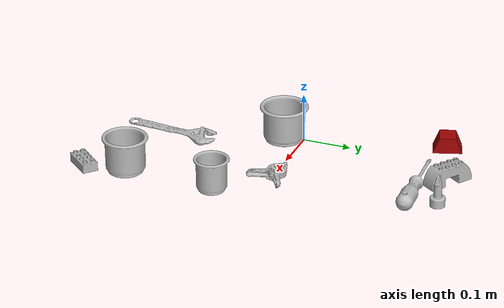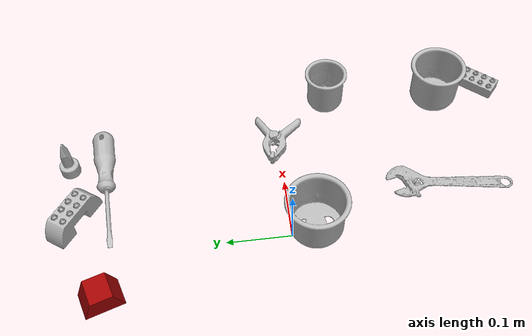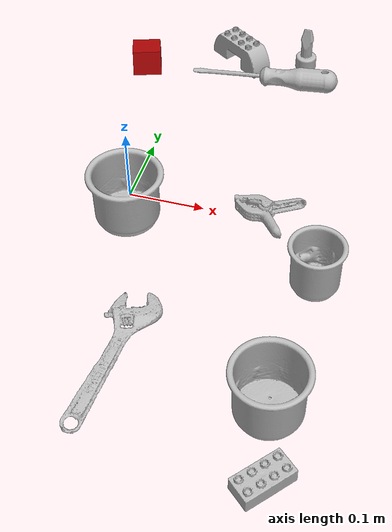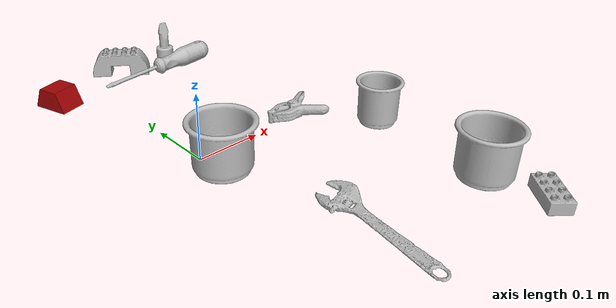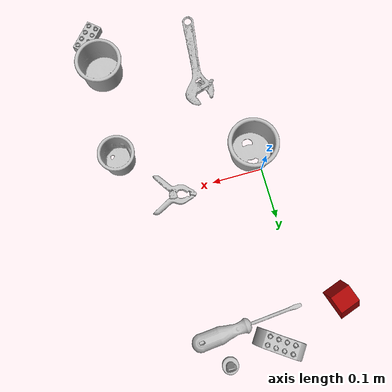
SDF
<sdf version="1.4">
  <world name="default">
    <light name="light1" type="point">
      <pose>0 0 1 0 0 0</pose>
      <diffuse>3 3 3 1</diffuse>
      <specular>3 3 3 1</specular>
    </light>
    <light name="light2" type="point">
      <pose>0 0.5 2 0 0 0</pose>
      <diffuse>1 1 1 1</diffuse>
      <specular>1 1 1 1</specular>
    </light>
    <light name="light3" type="point">
      <pose>0 0.5 2 0 0 0</pose>
      <diffuse>3 3 3 1</diffuse>
      <specular>3 3 3 1</specular>
    </light>
    <scene>
      <ambient>0.7 0.7 0.7</ambient>
    </scene>
    <model name="cup1">
      <link name="link_cup1">
        <collision name="default">
          <geometry>
            <mesh>
              <uri>model://d_cups/collision_meshes/collision.obj</uri>
              <scale>1.0 1.0 1.0</scale>
            </mesh>
          </geometry>
          <surface>
            <friction>
              <ode>
                <mu>0.5</mu>
                <mu2>0.5</mu2>
              </ode>
            </friction>
          <contact>
        <ode>
            <max_vel>0</max_vel>
            <min_depth>0.0001</min_depth>
            <kp>1e8</kp>
        </ode>
    </contact></surface>
        </collision>
        <visual name="default">
          <geometry>
            <mesh>
              <uri>model://d_cups/visual_meshes/visual.dae</uri>
              <scale>1.0 1.0 1.0</scale>
            </mesh>
          </geometry>
        </visual>
        <inertial>
          <mass>0.06783133745193481</mass>
          <pose>0.0008068059105426073 0.0019117397023364902 -0.002266651252284646 0.24012426461604838 -0.24709695541432683 0.5942481546461544</pose>
          <inertia>
            <ixx>5.679078e-05</ixx>
            <iyy>5.662642e-05</iyy>
            <izz>5.1405317e-05</izz>
            <ixy>0</ixy>
            <ixz>0</ixz>
            <iyz>0</iyz>
          </inertia>
        </inertial>
      </link>
      <pose>0.26460403203964233 -0.09142007678747177 0.0346590019762516 -6.030296950677269e-07 -3.780138223088021e-07 1.8119705851687344</pose>
    </model>
    <model name="cup2">
      <link name="link_cup2">
        <collision name="default">
          <geometry>
            <mesh>
              <uri>model://h_cups/collision_meshes/collision.obj</uri>
              <scale>1.0 1.0 1.0</scale>
            </mesh>
          </geometry>
          <surface>
            <friction>
              <ode>
                <mu>0.5</mu>
                <mu2>0.5</mu2>
              </ode>
            </friction>
          <contact>
        <ode>
            <max_vel>0</max_vel>
            <min_depth>0.0001</min_depth>
            <kp>1e8</kp>
        </ode>
    </contact></surface>
        </collision>
        <visual name="default">
          <geometry>
            <mesh>
              <uri>model://h_cups/visual_meshes/visual.dae</uri>
              <scale>1.0 1.0 1.0</scale>
            </mesh>
          </geometry>
        </visual>
        <inertial>
          <mass>0.0420527309179306</mass>
          <pose>-2.702834171941504e-05 0.0002301869390066713 -0.0018405404407531023 -0.02436231807299455 0.06545237013505961 0.1288477560592675</pose>
          <inertia>
            <ixx>5.430915e-05</ixx>
            <iyy>5.3661057e-05</iyy>
            <izz>5.69554e-05</izz>
            <ixy>0</ixy>
            <ixz>0</ixz>
            <iyz>0</iyz>
          </inertia>
        </inertial>
      </link>
      <pose>0.2527329623699188 -0.28120219707489014 0.037758007645606995 -5.019243565877972e-07 -9.220627261475667e-08 -0.9047771476535768</pose>
    </model>
    <model name="cup3">
      <link name="link_cup3">
        <collision name="default">
          <geometry>
            <mesh>
              <uri>model://i_cups/collision_meshes/collision.obj</uri>
              <scale>1.0 1.0 1.0</scale>
            </mesh>
          </geometry>
          <surface>
            <friction>
              <ode>
                <mu>0.5</mu>
                <mu2>0.5</mu2>
              </ode>
            </friction>
          <contact>
        <ode>
            <max_vel>0</max_vel>
            <min_depth>0.0001</min_depth>
            <kp>1e8</kp>
        </ode>
    </contact></surface>
        </collision>
        <visual name="default">
          <geometry>
            <mesh>
              <uri>model://i_cups/visual_meshes/visual.dae</uri>
              <scale>1.0 1.0 1.0</scale>
            </mesh>
          </geometry>
        </visual>
        <inertial>
          <mass>0.1172947883605957</mass>
          <pose>0.00011240218736929819 0.00016797319403849542 -0.0008579035638831556 -0.028982974239284674 -0.039873277979934216 -0.3459139003356122</pose>
          <inertia>
            <ixx>0.00016239638</ixx>
            <iyy>0.00016382721</iyy>
            <izz>0.00018150422</izz>
            <ixy>0</ixy>
            <ixz>0</ixz>
            <iyz>0</iyz>
          </inertia>
        </inertial>
      </link>
      <pose>0.010120023041963577 -0.038659144192934036 0.03777468204498291 0.001958170836712575 -0.006326687011724528 -1.8737668466956896</pose>
    </model>
    <model name="toy1">
      <link name="link_toy1">
        <collision name="default">
          <geometry>
            <mesh>
              <uri>model://prism/collision_meshes/collision.obj</uri>
              <scale>0.5 0.5 0.5</scale>
            </mesh>
          </geometry>
          <surface>
            <friction>
              <ode>
                <mu>0.5</mu>
                <mu2>0.5</mu2>
              </ode>
            </friction>
          <contact>
        <ode>
            <max_vel>0</max_vel>
            <min_depth>0.0001</min_depth>
            <kp>1e8</kp>
        </ode>
    </contact></surface>
        </collision>
        <visual name="default">
          <geometry>
            <mesh>
              <uri>model://prism/visual_meshes/visual.dae</uri>
              <scale>0.5 0.5 0.5</scale>
            </mesh>
          </geometry>
        </visual>
        <inertial>
          <mass>0.04854338616132736</mass>
          <pose>-4.92679828312248e-05 -2.480786349678965e-07 -0.0016934549203142524 0.0 0.006559181697473799 0.0</pose>
          <inertia>
            <ixx>1.0952453e-05</ixx>
            <iyy>1.3236178e-05</iyy>
            <izz>1.6212734e-05</izz>
            <ixy>0</ixy>
            <ixz>0</ixz>
            <iyz>0</iyz>
          </inertia>
        </inertial>
      </link>
      <pose>-0.06966307014226913 0.28306880593299866 0.01608499512076378 1.230285619880828e-07 3.6785678919611443e-09 1.8932133924807981</pose>
    </model>
    <model name="toy2">
      <link name="link_toy2">
        <collision name="default">
          <geometry>
            <mesh>
              <uri>model://e_toy_airplane/collision_meshes/collision.obj</uri>
              <scale>1.0 1.0 1.0</scale>
            </mesh>
          </geometry>
          <surface>
            <friction>
              <ode>
                <mu>0.5</mu>
                <mu2>0.5</mu2>
              </ode>
            </friction>
          <contact>
        <ode>
            <max_vel>0</max_vel>
            <min_depth>0.0001</min_depth>
            <kp>1e8</kp>
        </ode>
    </contact></surface>
        </collision>
        <visual name="default">
          <geometry>
            <mesh>
              <uri>model://e_toy_airplane/visual_meshes/visual.dae</uri>
              <scale>1.0 1.0 1.0</scale>
            </mesh>
          </geometry>
        </visual>
        <inertial>
          <mass>0.014407381415367126</mass>
          <pose>0.00011740459740394726 -2.2482932763523422e-05 -0.011187206022441387 0.005518488041491648 0.009228285270614433 0.15041380385765837</pose>
          <inertia>
            <ixx>4.397297e-06</ixx>
            <iyy>4.352315e-06</iyy>
            <izz>1.3215607e-06</izz>
            <ixy>0</ixy>
            <ixz>0</ixz>
            <iyz>0</iyz>
          </inertia>
        </inertial>
      </link>
      <pose>0.16504952311515808 0.3386755883693695 0.03321223333477974 6.317616704694338e-05 -0.00017268339189021993 1.37752930335627</pose>
    </model>
    <model name="toy3">
      <link name="link_toy3">
        <collision name="default">
          <geometry>
            <mesh>
              <uri>model://e_lego_duplo/collision_meshes/collision.obj</uri>
              <scale>1.0 1.0 1.0</scale>
            </mesh>
          </geometry>
          <surface>
            <friction>
              <ode>
                <mu>0.5</mu>
                <mu2>0.5</mu2>
              </ode>
            </friction>
          <contact>
        <ode>
            <max_vel>0</max_vel>
            <min_depth>0.0001</min_depth>
            <kp>1e8</kp>
        </ode>
    </contact></surface>
        </collision>
        <visual name="default">
          <geometry>
            <mesh>
              <uri>model://e_lego_duplo/visual_meshes/visual.dae</uri>
              <scale>1.0 1.0 1.0</scale>
            </mesh>
          </geometry>
        </visual>
        <inertial>
          <mass>0.059077512472867966</mass>
          <pose>0.00032560460385866463 0.0002348544221604243 0.0019521447829902172 -0.0225678114641467 -6.824730634042773e-05 -0.007625154901652298</pose>
          <inertia>
            <ixx>1.2319611e-05</ixx>
            <iyy>5.0562856e-05</iyy>
            <izz>4.923807e-05</izz>
            <ixy>0</ixy>
            <ixz>0</ixz>
            <iyz>0</iyz>
          </inertia>
        </inertial>
      </link>
      <pose>0.06742352992296219 0.32742834091186523 0.021809006109833717 -1.050773683884243e-08 4.0832459482281716e-07 -0.609649007835408</pose>
    </model>
    <model name="toy4">
      <link name="link_toy4">
        <collision name="default">
          <geometry>
            <mesh>
              <uri>model://c_lego_duplo/collision_meshes/collision.obj</uri>
              <scale>1.0 1.0 1.0</scale>
            </mesh>
          </geometry>
          <surface>
            <friction>
              <ode>
                <mu>0.5</mu>
                <mu2>0.5</mu2>
              </ode>
            </friction>
          <contact>
        <ode>
            <max_vel>0</max_vel>
            <min_depth>0.0001</min_depth>
            <kp>1e8</kp>
        </ode>
    </contact></surface>
        </collision>
        <visual name="default">
          <geometry>
            <mesh>
              <uri>model://c_lego_duplo/visual_meshes/visual.dae</uri>
              <scale>1.0 1.0 1.0</scale>
            </mesh>
          </geometry>
        </visual>
        <inertial>
          <mass>0.019630447030067444</mass>
          <pose>0.000316459103487432 0.00019464583601802588 0.0010453149443492293 -0.011520787241280632 0.0059000791517924015 0.031100331826339908</pose>
          <inertia>
            <ixx>7.554163e-06</ixx>
            <iyy>2.4130718e-06</iyy>
            <izz>8.827816e-06</izz>
            <ixy>0</ixy>
            <ixz>0</ixz>
            <iyz>0</iyz>
          </inertia>
        </inertial>
      </link>
      <pose>0.2664867043495178 -0.3655169606208801 0.011981488205492496 0.008019156149753707 -0.0020918607478498693 -0.7436800540288477</pose>
    </model>
    <model name="hardware1">
      <link name="link_hardware1">
        <collision name="default">
          <geometry>
            <mesh>
              <uri>model://flat_screwdriver/collision_meshes/collision.obj</uri>
              <scale>1.0 1.0 1.0</scale>
            </mesh>
          </geometry>
          <surface>
            <friction>
              <ode>
                <mu>0.5</mu>
                <mu2>0.5</mu2>
              </ode>
            </friction>
          <contact>
        <ode>
            <max_vel>0</max_vel>
            <min_depth>0.0001</min_depth>
            <kp>1e8</kp>
        </ode>
    </contact></surface>
        </collision>
        <visual name="default">
          <geometry>
            <mesh>
              <uri>model://flat_screwdriver/visual_meshes/visual.dae</uri>
              <scale>1.0 1.0 1.0</scale>
            </mesh>
          </geometry>
        </visual>
        <inertial>
          <mass>0.05795019492506981</mass>
          <pose>-0.0489187128841877 -0.0006576800369657576 -0.0006140916375443339 -0.5616548332173045 -0.0032337243504420286 0.0069822829580931615</pose>
          <inertia>
            <ixx>6.846775e-06</ixx>
            <iyy>8.6921296e-05</iyy>
            <izz>8.688106e-05</izz>
            <ixy>0</ixy>
            <ixz>0</ixz>
            <iyz>0</iyz>
          </inertia>
        </inertial>
      </link>
      <pose>0.11652019619941711 0.27851253747940063 0.01533858384937048 -0.21440850509732257 0.04069595636304109 -3.0758760818061925</pose>
    </model>
    <model name="hardware2">
      <link name="link_hardware2">
        <collision name="default">
          <geometry>
            <mesh>
              <uri>model://medium_clamp/collision_meshes/collision.obj</uri>
              <scale>1.0 1.0 1.0</scale>
            </mesh>
          </geometry>
          <surface>
            <friction>
              <ode>
                <mu>0.5</mu>
                <mu2>0.5</mu2>
              </ode>
            </friction>
          <contact>
        <ode>
            <max_vel>0</max_vel>
            <min_depth>0.0001</min_depth>
            <kp>1e8</kp>
        </ode>
    </contact></surface>
        </collision>
        <visual name="default">
          <geometry>
            <mesh>
              <uri>model://medium_clamp/visual_meshes/visual.dae</uri>
              <scale>1.0 1.0 1.0</scale>
            </mesh>
          </geometry>
        </visual>
        <inertial>
          <mass>0.028340468183159828</mass>
          <pose>0.0053909942507743835 0.0003953247796744108 -0.0001222157443407923 -0.001226920261124021 0.0025845025680982987 0.03820769890719856</pose>
          <inertia>
            <ixx>7.720961e-06</ixx>
            <iyy>1.1236185e-05</iyy>
            <izz>1.7307093e-05</izz>
            <ixy>0</ixy>
            <ixz>0</ixz>
            <iyz>0</iyz>
          </inertia>
        </inertial>
      </link>
      <pose>0.1828656792640686 0.004575387574732304 0.013533586636185646 0.07742601765808634 0.0854497483197544 2.901721064638739</pose>
    </model>
    <model name="hardware3">
      <link name="link_hardware3">
        <collision name="default">
          <geometry>
            <mesh>
              <uri>model://adjustable_wrench/collision_meshes/collision.obj</uri>
              <scale>1.0 1.0 1.0</scale>
            </mesh>
          </geometry>
          <surface>
            <friction>
              <ode>
                <mu>0.5</mu>
                <mu2>0.5</mu2>
              </ode>
            </friction>
          <contact>
        <ode>
            <max_vel>0</max_vel>
            <min_depth>0.0001</min_depth>
            <kp>1e8</kp>
        </ode>
    </contact></surface>
        </collision>
        <visual name="default">
          <geometry>
            <mesh>
              <uri>model://adjustable_wrench/visual_meshes/visual.dae</uri>
              <scale>1.0 1.0 1.0</scale>
            </mesh>
          </geometry>
        </visual>
        <inertial>
          <mass>0.023935195058584213</mass>
          <pose>0.03740980476140976 -0.0028968877159059048 -0.001114922808483243 -0.014473210185193002 0.006656019736435525 -0.010954188403863873</pose>
          <inertia>
            <ixx>4.898683e-06</ixx>
            <iyy>5.733333e-05</iyy>
            <izz>6.197185e-05</izz>
            <ixy>0</ixy>
            <ixz>0</ixz>
            <iyz>0</iyz>
          </inertia>
        </inertial>
      </link>
      <pose>0.06245749443769455 -0.2577604055404663 0.006125051993876696 0.04675939794552062 -0.029270322983149542 1.4402882868214126</pose>
    </model>
  <physics type="ode">
      <max_contacts>50</max_contacts>
      <ode>
        <solver>
          <type>quick</type>
          <iters>75</iters>
        </solver>
        <constraints>
          <contact_max_correcting_vel>0</contact_max_correcting_vel>
          <contact_surface_layer>0</contact_surface_layer>
        </constraints>
      </ode>
    </physics></world>
</sdf>
